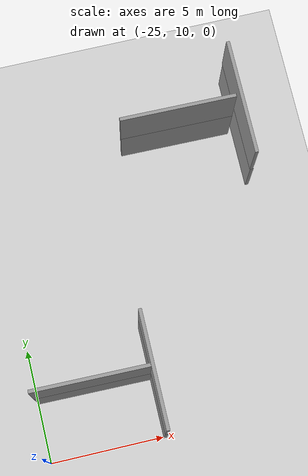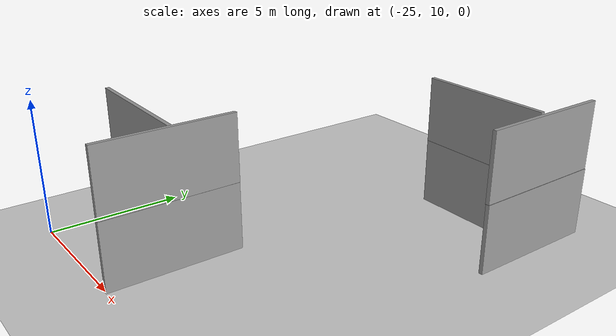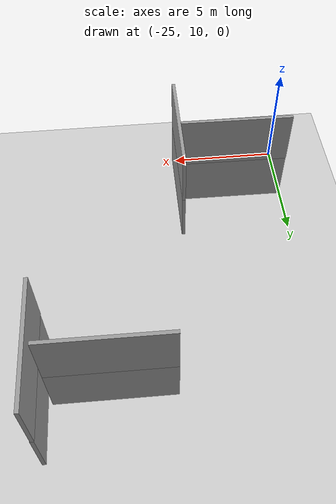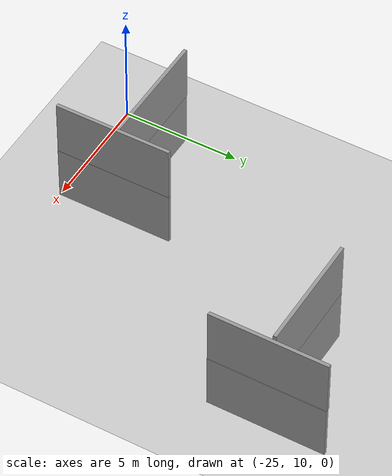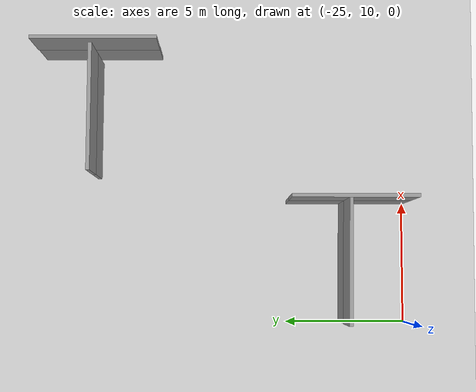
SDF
<sdf version="1.6">
 <world name="default">
  <model name="ground_plane">
   <static>1</static>
   <link name="link">
    <collision name="collision">
     <geometry><plane><normal>0 0 1</normal><size>100 100</size></plane></geometry>
     <surface><friction><ode><mu>100</mu><mu2>50</mu2></ode></friction></surface>
    </collision>
    <visual name="visual">
     <cast_shadows>0</cast_shadows>
     <geometry><plane><normal>0 0 1</normal><size>100 100</size></plane></geometry>
     <material>
      <script><uri>file://media/materials/scripts/gazebo.material</uri><name>Gazebo/Grey</name></script>
     </material>
    </visual>
   </link>
  </model>
  <model name="5mWall">
   <pose>-16.4333 22.9104 2.46833 0 -0 1.56041</pose>
   <link name="Wall_0">
    <collision name="Wall_0_Collision">
     <geometry><box><size>5 0.15 2.5</size></box></geometry>
     <pose>0 0 1.25 0 -0 0</pose>
    </collision>
    <visual name="Wall_0_Visual">
     <pose>0 0 1.25 0 -0 0</pose>
     <geometry><box><size>5 0.15 2.5</size></box></geometry>
     <material>
      <script><uri>file://media/materials/scripts/gazebo.material</uri><name>Gazebo/Grey</name></script>
      <ambient>1 1 1 1</ambient>
     </material>
     <meta><layer>0</layer></meta>
    </visual>
    <pose>0 -0 0 0 -0 1.5708</pose>
   </link>
   <static>1</static>
  </model>
  <model name="5mWall_0">
   <pose>-13.7019 22.7697 2.48433 0 -0 0</pose>
   <link name="Wall_0">
    <collision name="Wall_0_Collision">
     <geometry><box><size>5 0.15 2.5</size></box></geometry>
     <pose>0 0 1.25 0 -0 0</pose>
    </collision>
    <visual name="Wall_0_Visual">
     <pose>0 0 1.25 0 -0 0</pose>
     <geometry><box><size>5 0.15 2.5</size></box></geometry>
     <material>
      <script><uri>file://media/materials/scripts/gazebo.material</uri><name>Gazebo/Grey</name></script>
      <ambient>1 1 1 1</ambient>
     </material>
     <meta><layer>0</layer></meta>
    </visual>
    <pose>0 -0 0 0 -0 1.5708</pose>
   </link>
   <static>1</static>
  </model>
  <model name="5mWall_0_clone">
   <pose>-19.9182 12.476 2.47371 0 -0 0</pose>
   <link name="Wall_0">
    <collision name="Wall_0_Collision">
     <geometry><box><size>5 0.15 2.5</size></box></geometry>
     <pose>0 0 1.25 0 -0 0</pose>
    </collision>
    <visual name="Wall_0_Visual">
     <pose>0 0 1.25 0 -0 0</pose>
     <geometry><box><size>5 0.15 2.5</size></box></geometry>
     <material>
      <script><uri>file://media/materials/scripts/gazebo.material</uri><name>Gazebo/Grey</name></script>
      <ambient>1 1 1 1</ambient>
     </material>
     <meta><layer>0</layer></meta>
    </visual>
    <pose>0 -0 0 0 -0 1.5708</pose>
   </link>
   <static>1</static>
  </model>
  <model name="5mWall_clone">
   <pose>-22.4986 12.6897 2.46346 0 -0 1.56041</pose>
   <link name="Wall_0">
    <collision name="Wall_0_Collision">
     <geometry><box><size>5 0.15 2.5</size></box></geometry>
     <pose>0 0 1.25 0 -0 0</pose>
    </collision>
    <visual name="Wall_0_Visual">
     <pose>0 0 1.25 0 -0 0</pose>
     <geometry><box><size>5 0.15 2.5</size></box></geometry>
     <material>
      <script><uri>file://media/materials/scripts/gazebo.material</uri><name>Gazebo/Grey</name></script>
      <ambient>1 1 1 1</ambient>
     </material>
     <meta><layer>0</layer></meta>
    </visual>
    <pose>0 -0 0 0 -0 1.5708</pose>
   </link>
   <static>1</static>
  </model>
  <model name="5mWall_0_clone_0">
   <pose>-13.6787 22.7609 0 0 -0 0</pose>
   <link name="Wall_0">
    <collision name="Wall_0_Collision">
     <geometry><box><size>5 0.15 2.5</size></box></geometry>
     <pose>0 0 1.25 0 -0 0</pose>
    </collision>
    <visual name="Wall_0_Visual">
     <pose>0 0 1.25 0 -0 0</pose>
     <geometry><box><size>5 0.15 2.5</size></box></geometry>
     <material>
      <script><uri>file://media/materials/scripts/gazebo.material</uri><name>Gazebo/Grey</name></script>
      <ambient>1 1 1 1</ambient>
     </material>
     <meta><layer>0</layer></meta>
    </visual>
    <pose>0 -0 0 0 -0 1.5708</pose>
   </link>
   <static>1</static>
  </model>
  <model name="5mWall_clone_0">
   <pose>-16.4303 22.907 0 0 -0 1.56041</pose>
   <link name="Wall_0">
    <collision name="Wall_0_Collision">
     <geometry><box><size>5 0.15 2.5</size></box></geometry>
     <pose>0 0 1.25 0 -0 0</pose>
    </collision>
    <visual name="Wall_0_Visual">
     <pose>0 0 1.25 0 -0 0</pose>
     <geometry><box><size>5 0.15 2.5</size></box></geometry>
     <material>
      <script><uri>file://media/materials/scripts/gazebo.material</uri><name>Gazebo/Grey</name></script>
      <ambient>1 1 1 1</ambient>
     </material>
     <meta><layer>0</layer></meta>
    </visual>
    <pose>0 -0 0 0 -0 1.5708</pose>
   </link>
   <static>1</static>
  </model>
  <model name="5mWall_0_clone_clone">
   <pose>-19.9166 12.4682 0 0 -0 0</pose>
   <link name="Wall_0">
    <collision name="Wall_0_Collision">
     <geometry><box><size>5 0.15 2.5</size></box></geometry>
     <pose>0 0 1.25 0 -0 0</pose>
    </collision>
    <visual name="Wall_0_Visual">
     <pose>0 0 1.25 0 -0 0</pose>
     <geometry><box><size>5 0.15 2.5</size></box></geometry>
     <material>
      <script><uri>file://media/materials/scripts/gazebo.material</uri><name>Gazebo/Grey</name></script>
      <ambient>1 1 1 1</ambient>
     </material>
     <meta><layer>0</layer></meta>
    </visual>
    <pose>0 -0 0 0 -0 1.5708</pose>
   </link>
   <static>1</static>
  </model>
  <model name="5mWall_clone_clone">
   <pose>-22.4878 12.676 0 0 -0 1.56041</pose>
   <link name="Wall_0">
    <collision name="Wall_0_Collision">
     <geometry><box><size>5 0.15 2.5</size></box></geometry>
     <pose>0 0 1.25 0 -0 0</pose>
    </collision>
    <visual name="Wall_0_Visual">
     <pose>0 0 1.25 0 -0 0</pose>
     <geometry><box><size>5 0.15 2.5</size></box></geometry>
     <material>
      <script><uri>file://media/materials/scripts/gazebo.material</uri><name>Gazebo/Grey</name></script>
      <ambient>1 1 1 1</ambient>
     </material>
     <meta><layer>0</layer></meta>
    </visual>
    <pose>0 -0 0 0 -0 1.5708</pose>
   </link>
   <static>1</static>
  </model>
 </world>
</sdf>
